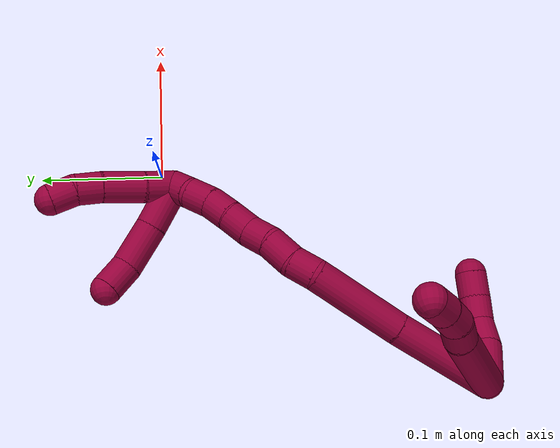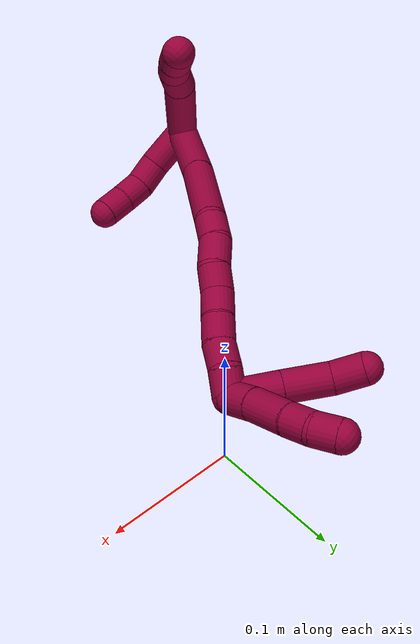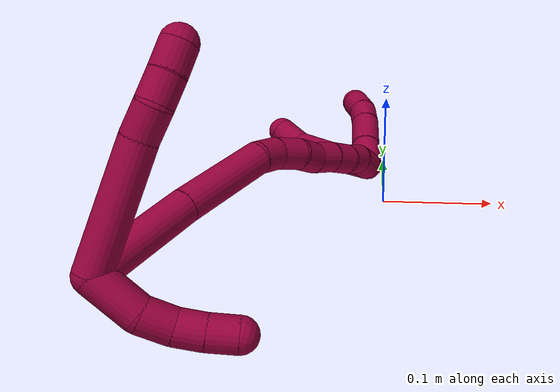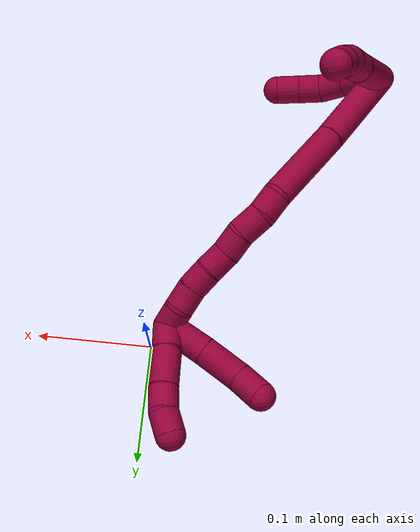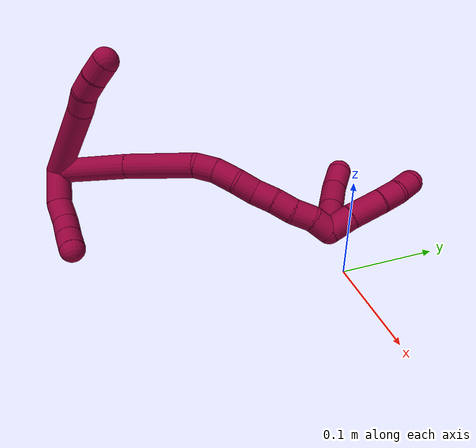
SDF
<sdf version="1.7">
 <world name="default">
  <model name="8">
   <static>0</static>
   <link name="8">
    <collision name="collision-cylinder-e_1_2_8">
     <pose>0.023711 0.036532 0.000295 -1.56272 0.575694 -0.57131</pose>
     <geometry><cylinder><radius>0.0125</radius><length>0.087106</length></cylinder></geometry>
     <surface>
      <friction><ode><mu>1.16</mu><mu2>1.16</mu2><slip1>0</slip1><slip2>0</slip2></ode></friction>
      <contact><ode><kp>1e+06</kp><kd>1</kd><max_vel>0</max_vel><min_depth>0.001</min_depth></ode></contact>
     </surface>
    </collision>
    <visual name="visual-cylinder-e_1_2_8">
     <pose>0.023711 0.036532 0.000295 -1.56272 0.575694 -0.57131</pose>
     <geometry><cylinder><radius>0.0125</radius><length>0.087106</length></cylinder></geometry>
     <material><ambient>0.584314 0 0.227451 1</ambient></material>
    </visual>
    <collision name="collision-cylinder-e_2_8_9">
     <pose>0.054654 0.081713 -0.000412 -1.68619 0.693083 -0.770286</pose>
     <geometry><cylinder><radius>0.0125</radius><length>0.022639</length></cylinder></geometry>
     <surface>
      <friction><ode><mu>1.16</mu><mu2>1.16</mu2><slip1>0</slip1><slip2>0</slip2></ode></friction>
      <contact><ode><kp>1e+06</kp><kd>1</kd><max_vel>0</max_vel><min_depth>0.001</min_depth></ode></contact>
     </surface>
    </collision>
    <visual name="visual-cylinder-e_2_8_9">
     <pose>0.054654 0.081713 -0.000412 -1.68619 0.693083 -0.770286</pose>
     <geometry><cylinder><radius>0.0125</radius><length>0.022639</length></cylinder></geometry>
     <material><ambient>0.584314 0 0.227451 1</ambient></material>
    </visual>
    <collision name="collision-cylinder-e_3_9_10">
     <pose>0.066059 0.099523 -0.001879 -1.6214 0.426944 -0.448395</pose>
     <geometry><cylinder><radius>0.0125</radius><length>0.020151</length></cylinder></geometry>
     <surface>
      <friction><ode><mu>1.16</mu><mu2>1.16</mu2><slip1>0</slip1><slip2>0</slip2></ode></friction>
      <contact><ode><kp>1e+06</kp><kd>1</kd><max_vel>0</max_vel><min_depth>0.001</min_depth></ode></contact>
     </surface>
    </collision>
    <visual name="visual-cylinder-e_3_9_10">
     <pose>0.066059 0.099523 -0.001879 -1.6214 0.426944 -0.448395</pose>
     <geometry><cylinder><radius>0.0125</radius><length>0.020151</length></cylinder></geometry>
     <material><ambient>0.584314 0 0.227451 1</ambient></material>
    </visual>
    <collision name="collision-cylinder-e_4_10_6">
     <pose>0.07371 0.118112 -0.002436 -1.58069 0.353456 -0.356896</pose>
     <geometry><cylinder><radius>0.0125</radius><length>0.020104</length></cylinder></geometry>
     <surface>
      <friction><ode><mu>1.16</mu><mu2>1.16</mu2><slip1>0</slip1><slip2>0</slip2></ode></friction>
      <contact><ode><kp>1e+06</kp><kd>1</kd><max_vel>0</max_vel><min_depth>0.001</min_depth></ode></contact>
     </surface>
    </collision>
    <visual name="visual-cylinder-e_4_10_6">
     <pose>0.07371 0.118112 -0.002436 -1.58069 0.353456 -0.356896</pose>
     <geometry><cylinder><radius>0.0125</radius><length>0.020104</length></cylinder></geometry>
     <material><ambient>0.584314 0 0.227451 1</ambient></material>
    </visual>
    <collision name="collision-cylinder-e_1_2_11">
     <pose>-0.002543 -0.006082 -0.017003 2.79809 -0.139918 -0.767859</pose>
     <geometry><cylinder><radius>0.0125</radius><length>0.036472</length></cylinder></geometry>
     <surface>
      <friction><ode><mu>1.16</mu><mu2>1.16</mu2><slip1>0</slip1><slip2>0</slip2></ode></friction>
      <contact><ode><kp>1e+06</kp><kd>1</kd><max_vel>0</max_vel><min_depth>0.001</min_depth></ode></contact>
     </surface>
    </collision>
    <visual name="visual-cylinder-e_1_2_11">
     <pose>-0.002543 -0.006082 -0.017003 2.79809 -0.139918 -0.767859</pose>
     <geometry><cylinder><radius>0.0125</radius><length>0.036472</length></cylinder></geometry>
     <material><ambient>0.584314 0 0.227451 1</ambient></material>
    </visual>
    <collision name="collision-cylinder-e_2_11_12">
     <pose>-0.006589 -0.01218 -0.045264 3.14009 -0.132709 -3.1189</pose>
     <geometry><cylinder><radius>0.0125</radius><length>0.022717</length></cylinder></geometry>
     <surface>
      <friction><ode><mu>1.16</mu><mu2>1.16</mu2><slip1>0</slip1><slip2>0</slip2></ode></friction>
      <contact><ode><kp>1e+06</kp><kd>1</kd><max_vel>0</max_vel><min_depth>0.001</min_depth></ode></contact>
     </surface>
    </collision>
    <visual name="visual-cylinder-e_2_11_12">
     <pose>-0.006589 -0.01218 -0.045264 3.14009 -0.132709 -3.1189</pose>
     <geometry><cylinder><radius>0.0125</radius><length>0.022717</length></cylinder></geometry>
     <material><ambient>0.584314 0 0.227451 1</ambient></material>
    </visual>
    <collision name="collision-cylinder-e_3_12_13">
     <pose>-0.006601 -0.011276 -0.0665 -3.04953 0.147739 -2.02802</pose>
     <geometry><cylinder><radius>0.0125</radius><length>0.02026</length></cylinder></geometry>
     <surface>
      <friction><ode><mu>1.16</mu><mu2>1.16</mu2><slip1>0</slip1><slip2>0</slip2></ode></friction>
      <contact><ode><kp>1e+06</kp><kd>1</kd><max_vel>0</max_vel><min_depth>0.001</min_depth></ode></contact>
     </surface>
    </collision>
    <visual name="visual-cylinder-e_3_12_13">
     <pose>-0.006601 -0.011276 -0.0665 -3.04953 0.147739 -2.02802</pose>
     <geometry><cylinder><radius>0.0125</radius><length>0.02026</length></cylinder></geometry>
     <material><ambient>0.584314 0 0.227451 1</ambient></material>
    </visual>
    <collision name="collision-cylinder-e_4_13_5">
     <pose>-0.00313 -0.008575 -0.086402 -2.96418 0.193903 -1.66005</pose>
     <geometry><cylinder><radius>0.0125</radius><length>0.020552</length></cylinder></geometry>
     <surface>
      <friction><ode><mu>1.16</mu><mu2>1.16</mu2><slip1>0</slip1><slip2>0</slip2></ode></friction>
      <contact><ode><kp>1e+06</kp><kd>1</kd><max_vel>0</max_vel><min_depth>0.001</min_depth></ode></contact>
     </surface>
    </collision>
    <visual name="visual-cylinder-e_4_13_5">
     <pose>-0.00313 -0.008575 -0.086402 -2.96418 0.193903 -1.66005</pose>
     <geometry><cylinder><radius>0.0125</radius><length>0.020552</length></cylinder></geometry>
     <material><ambient>0.584314 0 0.227451 1</ambient></material>
    </visual>
    <collision name="collision-cylinder-e_1_2_14">
     <pose>-0.007471 0.035074 -0.018212 -2.04972 -0.186825 0.306005</pose>
     <geometry><cylinder><radius>0.0125</radius><length>0.080442</length></cylinder></geometry>
     <surface>
      <friction><ode><mu>1.16</mu><mu2>1.16</mu2><slip1>0</slip1><slip2>0</slip2></ode></friction>
      <contact><ode><kp>1e+06</kp><kd>1</kd><max_vel>0</max_vel><min_depth>0.001</min_depth></ode></contact>
     </surface>
    </collision>
    <visual name="visual-cylinder-e_1_2_14">
     <pose>-0.007471 0.035074 -0.018212 -2.04972 -0.186825 0.306005</pose>
     <geometry><cylinder><radius>0.0125</radius><length>0.080442</length></cylinder></geometry>
     <material><ambient>0.584314 0 0.227451 1</ambient></material>
    </visual>
    <collision name="collision-cylinder-e_2_14_15">
     <pose>-0.021583 0.101288 -0.054946 -2.10738 -0.181291 0.316963</pose>
     <geometry><cylinder><radius>0.0125</radius><length>0.07367</length></cylinder></geometry>
     <surface>
      <friction><ode><mu>1.16</mu><mu2>1.16</mu2><slip1>0</slip1><slip2>0</slip2></ode></friction>
      <contact><ode><kp>1e+06</kp><kd>1</kd><max_vel>0</max_vel><min_depth>0.001</min_depth></ode></contact>
     </surface>
    </collision>
    <visual name="visual-cylinder-e_2_14_15">
     <pose>-0.021583 0.101288 -0.054946 -2.10738 -0.181291 0.316963</pose>
     <geometry><cylinder><radius>0.0125</radius><length>0.07367</length></cylinder></geometry>
     <material><ambient>0.584314 0 0.227451 1</ambient></material>
    </visual>
    <collision name="collision-cylinder-e_3_15_16">
     <pose>-0.032661 0.139468 -0.079545 -2.28285 -0.445136 0.918144</pose>
     <geometry><cylinder><radius>0.0125</radius><length>0.02061</length></cylinder></geometry>
     <surface>
      <friction><ode><mu>1.16</mu><mu2>1.16</mu2><slip1>0</slip1><slip2>0</slip2></ode></friction>
      <contact><ode><kp>1e+06</kp><kd>1</kd><max_vel>0</max_vel><min_depth>0.001</min_depth></ode></contact>
     </surface>
    </collision>
    <visual name="visual-cylinder-e_3_15_16">
     <pose>-0.032661 0.139468 -0.079545 -2.28285 -0.445136 0.918144</pose>
     <geometry><cylinder><radius>0.0125</radius><length>0.02061</length></cylinder></geometry>
     <material><ambient>0.584314 0 0.227451 1</ambient></material>
    </visual>
    <collision name="collision-cylinder-e_4_16_17">
     <pose>-0.041443 0.152526 -0.094652 -2.55391 -0.380823 1.13431</pose>
     <geometry><cylinder><radius>0.0125</radius><length>0.023376</length></cylinder></geometry>
     <surface>
      <friction><ode><mu>1.16</mu><mu2>1.16</mu2><slip1>0</slip1><slip2>0</slip2></ode></friction>
      <contact><ode><kp>1e+06</kp><kd>1</kd><max_vel>0</max_vel><min_depth>0.001</min_depth></ode></contact>
     </surface>
    </collision>
    <visual name="visual-cylinder-e_4_16_17">
     <pose>-0.041443 0.152526 -0.094652 -2.55391 -0.380823 1.13431</pose>
     <geometry><cylinder><radius>0.0125</radius><length>0.023376</length></cylinder></geometry>
     <material><ambient>0.584314 0 0.227451 1</ambient></material>
    </visual>
    <collision name="collision-cylinder-e_5_17_18">
     <pose>-0.051884 0.162972 -0.110547 -2.56847 -0.641054 1.68972</pose>
     <geometry><cylinder><radius>0.0125</radius><length>0.020389</length></cylinder></geometry>
     <surface>
      <friction><ode><mu>1.16</mu><mu2>1.16</mu2><slip1>0</slip1><slip2>0</slip2></ode></friction>
      <contact><ode><kp>1e+06</kp><kd>1</kd><max_vel>0</max_vel><min_depth>0.001</min_depth></ode></contact>
     </surface>
    </collision>
    <visual name="visual-cylinder-e_5_17_18">
     <pose>-0.051884 0.162972 -0.110547 -2.56847 -0.641054 1.68972</pose>
     <geometry><cylinder><radius>0.0125</radius><length>0.020389</length></cylinder></geometry>
     <material><ambient>0.584314 0 0.227451 1</ambient></material>
    </visual>
    <collision name="collision-cylinder-e_6_18_19">
     <pose>-0.06215 0.173253 -0.125013 -2.48557 -0.410095 1.09713</pose>
     <geometry><cylinder><radius>0.0125</radius><length>0.020919</length></cylinder></geometry>
     <surface>
      <friction><ode><mu>1.16</mu><mu2>1.16</mu2><slip1>0</slip1><slip2>0</slip2></ode></friction>
      <contact><ode><kp>1e+06</kp><kd>1</kd><max_vel>0</max_vel><min_depth>0.001</min_depth></ode></contact>
     </surface>
    </collision>
    <visual name="visual-cylinder-e_6_18_19">
     <pose>-0.06215 0.173253 -0.125013 -2.48557 -0.410095 1.09713</pose>
     <geometry><cylinder><radius>0.0125</radius><length>0.020919</length></cylinder></geometry>
     <material><ambient>0.584314 0 0.227451 1</ambient></material>
    </visual>
    <collision name="collision-cylinder-e_7_19_20">
     <pose>-0.071298 0.183888 -0.1401 -2.57293 -0.51073 1.45819</pose>
     <geometry><cylinder><radius>0.0125</radius><length>0.020367</length></cylinder></geometry>
     <surface>
      <friction><ode><mu>1.16</mu><mu2>1.16</mu2><slip1>0</slip1><slip2>0</slip2></ode></friction>
      <contact><ode><kp>1e+06</kp><kd>1</kd><max_vel>0</max_vel><min_depth>0.001</min_depth></ode></contact>
     </surface>
    </collision>
    <visual name="visual-cylinder-e_7_19_20">
     <pose>-0.071298 0.183888 -0.1401 -2.57293 -0.51073 1.45819</pose>
     <geometry><cylinder><radius>0.0125</radius><length>0.020367</length></cylinder></geometry>
     <material><ambient>0.584314 0 0.227451 1</ambient></material>
    </visual>
    <collision name="collision-cylinder-e_8_20_21">
     <pose>-0.081975 0.194479 -0.153513 -2.36645 -0.601828 1.30003</pose>
     <geometry><cylinder><radius>0.0125</radius><length>0.020132</length></cylinder></geometry>
     <surface>
      <friction><ode><mu>1.16</mu><mu2>1.16</mu2><slip1>0</slip1><slip2>0</slip2></ode></friction>
      <contact><ode><kp>1e+06</kp><kd>1</kd><max_vel>0</max_vel><min_depth>0.001</min_depth></ode></contact>
     </surface>
    </collision>
    <visual name="visual-cylinder-e_8_20_21">
     <pose>-0.081975 0.194479 -0.153513 -2.36645 -0.601828 1.30003</pose>
     <geometry><cylinder><radius>0.0125</radius><length>0.020132</length></cylinder></geometry>
     <material><ambient>0.584314 0 0.227451 1</ambient></material>
    </visual>
    <collision name="collision-cylinder-e_9_21_1">
     <pose>-0.094675 0.20333 -0.165972 -2.70552 -0.770898 2.14199</pose>
     <geometry><cylinder><radius>0.0125</radius><length>0.020096</length></cylinder></geometry>
     <surface>
      <friction><ode><mu>1.16</mu><mu2>1.16</mu2><slip1>0</slip1><slip2>0</slip2></ode></friction>
      <contact><ode><kp>1e+06</kp><kd>1</kd><max_vel>0</max_vel><min_depth>0.001</min_depth></ode></contact>
     </surface>
    </collision>
    <visual name="visual-cylinder-e_9_21_1">
     <pose>-0.094675 0.20333 -0.165972 -2.70552 -0.770898 2.14199</pose>
     <geometry><cylinder><radius>0.0125</radius><length>0.020096</length></cylinder></geometry>
     <material><ambient>0.584314 0 0.227451 1</ambient></material>
    </visual>
    <collision name="collision-cylinder-e_1_1_22">
     <pose>-0.10521 0.218205 -0.170346 -1.39024 -0.285787 0.238833</pose>
     <geometry><cylinder><radius>0.0125</radius><length>0.025069</length></cylinder></geometry>
     <surface>
      <friction><ode><mu>1.16</mu><mu2>1.16</mu2><slip1>0</slip1><slip2>0</slip2></ode></friction>
      <contact><ode><kp>1e+06</kp><kd>1</kd><max_vel>0</max_vel><min_depth>0.001</min_depth></ode></contact>
     </surface>
    </collision>
    <visual name="visual-cylinder-e_1_1_22">
     <pose>-0.10521 0.218205 -0.170346 -1.39024 -0.285787 0.238833</pose>
     <geometry><cylinder><radius>0.0125</radius><length>0.025069</length></cylinder></geometry>
     <material><ambient>0.584314 0 0.227451 1</ambient></material>
    </visual>
    <collision name="collision-cylinder-e_2_22_23">
     <pose>-0.11456 0.245909 -0.166554 -1.46836 -0.349523 0.316031</pose>
     <geometry><cylinder><radius>0.0125</radius><length>0.033968</length></cylinder></geometry>
     <surface>
      <friction><ode><mu>1.16</mu><mu2>1.16</mu2><slip1>0</slip1><slip2>0</slip2></ode></friction>
      <contact><ode><kp>1e+06</kp><kd>1</kd><max_vel>0</max_vel><min_depth>0.001</min_depth></ode></contact>
     </surface>
    </collision>
    <visual name="visual-cylinder-e_2_22_23">
     <pose>-0.11456 0.245909 -0.166554 -1.46836 -0.349523 0.316031</pose>
     <geometry><cylinder><radius>0.0125</radius><length>0.033968</length></cylinder></geometry>
     <material><ambient>0.584314 0 0.227451 1</ambient></material>
    </visual>
    <collision name="collision-cylinder-e_3_23_24">
     <pose>-0.12458 0.271031 -0.163254 -1.39234 -0.420601 0.353085</pose>
     <geometry><cylinder><radius>0.0125</radius><length>0.020591</length></cylinder></geometry>
     <surface>
      <friction><ode><mu>1.16</mu><mu2>1.16</mu2><slip1>0</slip1><slip2>0</slip2></ode></friction>
      <contact><ode><kp>1e+06</kp><kd>1</kd><max_vel>0</max_vel><min_depth>0.001</min_depth></ode></contact>
     </surface>
    </collision>
    <visual name="visual-cylinder-e_3_23_24">
     <pose>-0.12458 0.271031 -0.163254 -1.39234 -0.420601 0.353085</pose>
     <geometry><cylinder><radius>0.0125</radius><length>0.020591</length></cylinder></geometry>
     <material><ambient>0.584314 0 0.227451 1</ambient></material>
    </visual>
    <collision name="collision-cylinder-e_4_24_4">
     <pose>-0.134525 0.287908 -0.158036 -1.13516 -0.598841 0.388666</pose>
     <geometry><cylinder><radius>0.0125</radius><length>0.020372</length></cylinder></geometry>
     <surface>
      <friction><ode><mu>1.16</mu><mu2>1.16</mu2><slip1>0</slip1><slip2>0</slip2></ode></friction>
      <contact><ode><kp>1e+06</kp><kd>1</kd><max_vel>0</max_vel><min_depth>0.001</min_depth></ode></contact>
     </surface>
    </collision>
    <visual name="visual-cylinder-e_4_24_4">
     <pose>-0.134525 0.287908 -0.158036 -1.13516 -0.598841 0.388666</pose>
     <geometry><cylinder><radius>0.0125</radius><length>0.020372</length></cylinder></geometry>
     <material><ambient>0.584314 0 0.227451 1</ambient></material>
    </visual>
    <collision name="collision-cylinder-e_1_1_25">
     <pose>-0.112204 0.211155 -0.157563 -0.309654 -0.591017 0.094954</pose>
     <geometry><cylinder><radius>0.0125</radius><length>0.037786</length></cylinder></geometry>
     <surface>
      <friction><ode><mu>1.16</mu><mu2>1.16</mu2><slip1>0</slip1><slip2>0</slip2></ode></friction>
      <contact><ode><kp>1e+06</kp><kd>1</kd><max_vel>0</max_vel><min_depth>0.001</min_depth></ode></contact>
     </surface>
    </collision>
    <visual name="visual-cylinder-e_1_1_25">
     <pose>-0.112204 0.211155 -0.157563 -0.309654 -0.591017 0.094954</pose>
     <geometry><cylinder><radius>0.0125</radius><length>0.037786</length></cylinder></geometry>
     <material><ambient>0.584314 0 0.227451 1</ambient></material>
    </visual>
    <collision name="collision-cylinder-e_2_25_26">
     <pose>-0.132937 0.221643 -0.128253 -0.378104 -0.583502 0.114799</pose>
     <geometry><cylinder><radius>0.0125</radius><length>0.03705</length></cylinder></geometry>
     <surface>
      <friction><ode><mu>1.16</mu><mu2>1.16</mu2><slip1>0</slip1><slip2>0</slip2></ode></friction>
      <contact><ode><kp>1e+06</kp><kd>1</kd><max_vel>0</max_vel><min_depth>0.001</min_depth></ode></contact>
     </surface>
    </collision>
    <visual name="visual-cylinder-e_2_25_26">
     <pose>-0.132937 0.221643 -0.128253 -0.378104 -0.583502 0.114799</pose>
     <geometry><cylinder><radius>0.0125</radius><length>0.03705</length></cylinder></geometry>
     <material><ambient>0.584314 0 0.227451 1</ambient></material>
    </visual>
    <collision name="collision-cylinder-e_3_26_3">
     <pose>-0.147357 0.23419 -0.104202 -0.615059 -0.34148 0.109413</pose>
     <geometry><cylinder><radius>0.0125</radius><length>0.025163</length></cylinder></geometry>
     <surface>
      <friction><ode><mu>1.16</mu><mu2>1.16</mu2><slip1>0</slip1><slip2>0</slip2></ode></friction>
      <contact><ode><kp>1e+06</kp><kd>1</kd><max_vel>0</max_vel><min_depth>0.001</min_depth></ode></contact>
     </surface>
    </collision>
    <visual name="visual-cylinder-e_3_26_3">
     <pose>-0.147357 0.23419 -0.104202 -0.615059 -0.34148 0.109413</pose>
     <geometry><cylinder><radius>0.0125</radius><length>0.025163</length></cylinder></geometry>
     <material><ambient>0.584314 0 0.227451 1</ambient></material>
    </visual>
    <collision name="collision-sphere-3">
     <pose>-0.151571 0.241031 -0.09452 0 -0 0</pose>
     <geometry><sphere><radius>0.0125</radius></sphere></geometry>
     <surface>
      <friction><ode><mu>1.16</mu><mu2>1.16</mu2><slip1>0</slip1><slip2>0</slip2></ode></friction>
      <contact><ode><kp>1e+06</kp><kd>1</kd><max_vel>0</max_vel><min_depth>0.001</min_depth></ode></contact>
     </surface>
    </collision>
    <visual name="visual-sphere-3">
     <pose>-0.151571 0.241031 -0.09452 0 -0 0</pose>
     <geometry><sphere><radius>0.0125</radius></sphere></geometry>
     <material><ambient>0.584314 0 0.227451 1</ambient></material>
    </visual>
    <collision name="collision-sphere-26">
     <pose>-0.143144 0.22735 -0.113885 0 -0 0</pose>
     <geometry><sphere><radius>0.0125</radius></sphere></geometry>
     <surface>
      <friction><ode><mu>1.16</mu><mu2>1.16</mu2><slip1>0</slip1><slip2>0</slip2></ode></friction>
      <contact><ode><kp>1e+06</kp><kd>1</kd><max_vel>0</max_vel><min_depth>0.001</min_depth></ode></contact>
     </surface>
    </collision>
    <visual name="visual-sphere-26">
     <pose>-0.143144 0.22735 -0.113885 0 -0 0</pose>
     <geometry><sphere><radius>0.0125</radius></sphere></geometry>
     <material><ambient>0.584314 0 0.227451 1</ambient></material>
    </visual>
    <collision name="collision-sphere-25">
     <pose>-0.122731 0.215935 -0.142621 0 -0 0</pose>
     <geometry><sphere><radius>0.0125</radius></sphere></geometry>
     <surface>
      <friction><ode><mu>1.16</mu><mu2>1.16</mu2><slip1>0</slip1><slip2>0</slip2></ode></friction>
      <contact><ode><kp>1e+06</kp><kd>1</kd><max_vel>0</max_vel><min_depth>0.001</min_depth></ode></contact>
     </surface>
    </collision>
    <visual name="visual-sphere-25">
     <pose>-0.122731 0.215935 -0.142621 0 -0 0</pose>
     <geometry><sphere><radius>0.0125</radius></sphere></geometry>
     <material><ambient>0.584314 0 0.227451 1</ambient></material>
    </visual>
    <collision name="collision-sphere-4">
     <pose>-0.140267 0.295535 -0.154485 0 -0 0</pose>
     <geometry><sphere><radius>0.0125</radius></sphere></geometry>
     <surface>
      <friction><ode><mu>1.16</mu><mu2>1.16</mu2><slip1>0</slip1><slip2>0</slip2></ode></friction>
      <contact><ode><kp>1e+06</kp><kd>1</kd><max_vel>0</max_vel><min_depth>0.001</min_depth></ode></contact>
     </surface>
    </collision>
    <visual name="visual-sphere-4">
     <pose>-0.140267 0.295535 -0.154485 0 -0 0</pose>
     <geometry><sphere><radius>0.0125</radius></sphere></geometry>
     <material><ambient>0.584314 0 0.227451 1</ambient></material>
    </visual>
    <collision name="collision-sphere-24">
     <pose>-0.128783 0.28028 -0.161586 0 -0 0</pose>
     <geometry><sphere><radius>0.0125</radius></sphere></geometry>
     <surface>
      <friction><ode><mu>1.16</mu><mu2>1.16</mu2><slip1>0</slip1><slip2>0</slip2></ode></friction>
      <contact><ode><kp>1e+06</kp><kd>1</kd><max_vel>0</max_vel><min_depth>0.001</min_depth></ode></contact>
     </surface>
    </collision>
    <visual name="visual-sphere-24">
     <pose>-0.128783 0.28028 -0.161586 0 -0 0</pose>
     <geometry><sphere><radius>0.0125</radius></sphere></geometry>
     <material><ambient>0.584314 0 0.227451 1</ambient></material>
    </visual>
    <collision name="collision-sphere-23">
     <pose>-0.120376 0.261782 -0.164923 0 -0 0</pose>
     <geometry><sphere><radius>0.0125</radius></sphere></geometry>
     <surface>
      <friction><ode><mu>1.16</mu><mu2>1.16</mu2><slip1>0</slip1><slip2>0</slip2></ode></friction>
      <contact><ode><kp>1e+06</kp><kd>1</kd><max_vel>0</max_vel><min_depth>0.001</min_depth></ode></contact>
     </surface>
    </collision>
    <visual name="visual-sphere-23">
     <pose>-0.120376 0.261782 -0.164923 0 -0 0</pose>
     <geometry><sphere><radius>0.0125</radius></sphere></geometry>
     <material><ambient>0.584314 0 0.227451 1</ambient></material>
    </visual>
    <collision name="collision-sphere-22">
     <pose>-0.108744 0.230035 -0.168186 0 -0 0</pose>
     <geometry><sphere><radius>0.0125</radius></sphere></geometry>
     <surface>
      <friction><ode><mu>1.16</mu><mu2>1.16</mu2><slip1>0</slip1><slip2>0</slip2></ode></friction>
      <contact><ode><kp>1e+06</kp><kd>1</kd><max_vel>0</max_vel><min_depth>0.001</min_depth></ode></contact>
     </surface>
    </collision>
    <visual name="visual-sphere-22">
     <pose>-0.108744 0.230035 -0.168186 0 -0 0</pose>
     <geometry><sphere><radius>0.0125</radius></sphere></geometry>
     <material><ambient>0.584314 0 0.227451 1</ambient></material>
    </visual>
    <collision name="collision-sphere-1">
     <pose>-0.101676 0.206374 -0.172505 0 -0 0</pose>
     <geometry><sphere><radius>0.0125</radius></sphere></geometry>
     <surface>
      <friction><ode><mu>1.16</mu><mu2>1.16</mu2><slip1>0</slip1><slip2>0</slip2></ode></friction>
      <contact><ode><kp>1e+06</kp><kd>1</kd><max_vel>0</max_vel><min_depth>0.001</min_depth></ode></contact>
     </surface>
    </collision>
    <visual name="visual-sphere-1">
     <pose>-0.101676 0.206374 -0.172505 0 -0 0</pose>
     <geometry><sphere><radius>0.0125</radius></sphere></geometry>
     <material><ambient>0.584314 0 0.227451 1</ambient></material>
    </visual>
    <collision name="collision-sphere-21">
     <pose>-0.087674 0.200285 -0.15944 0 -0 0</pose>
     <geometry><sphere><radius>0.0125</radius></sphere></geometry>
     <surface>
      <friction><ode><mu>1.16</mu><mu2>1.16</mu2><slip1>0</slip1><slip2>0</slip2></ode></friction>
      <contact><ode><kp>1e+06</kp><kd>1</kd><max_vel>0</max_vel><min_depth>0.001</min_depth></ode></contact>
     </surface>
    </collision>
    <visual name="visual-sphere-21">
     <pose>-0.087674 0.200285 -0.15944 0 -0 0</pose>
     <geometry><sphere><radius>0.0125</radius></sphere></geometry>
     <material><ambient>0.584314 0 0.227451 1</ambient></material>
    </visual>
    <collision name="collision-sphere-11">
     <pose>-0.005086 -0.012163 -0.034006 0 -0 0</pose>
     <geometry><sphere><radius>0.0125</radius></sphere></geometry>
     <surface>
      <friction><ode><mu>1.16</mu><mu2>1.16</mu2><slip1>0</slip1><slip2>0</slip2></ode></friction>
      <contact><ode><kp>1e+06</kp><kd>1</kd><max_vel>0</max_vel><min_depth>0.001</min_depth></ode></contact>
     </surface>
    </collision>
    <visual name="visual-sphere-11">
     <pose>-0.005086 -0.012163 -0.034006 0 -0 0</pose>
     <geometry><sphere><radius>0.0125</radius></sphere></geometry>
     <material><ambient>0.584314 0 0.227451 1</ambient></material>
    </visual>
    <collision name="collision-sphere-6">
     <pose>0.07719 0.127542 -0.002529 0 -0 0</pose>
     <geometry><sphere><radius>0.0125</radius></sphere></geometry>
     <surface>
      <friction><ode><mu>1.16</mu><mu2>1.16</mu2><slip1>0</slip1><slip2>0</slip2></ode></friction>
      <contact><ode><kp>1e+06</kp><kd>1</kd><max_vel>0</max_vel><min_depth>0.001</min_depth></ode></contact>
     </surface>
    </collision>
    <visual name="visual-sphere-6">
     <pose>0.07719 0.127542 -0.002529 0 -0 0</pose>
     <geometry><sphere><radius>0.0125</radius></sphere></geometry>
     <material><ambient>0.584314 0 0.227451 1</ambient></material>
    </visual>
    <collision name="collision-sphere-10">
     <pose>0.070231 0.108682 -0.002343 0 -0 0</pose>
     <geometry><sphere><radius>0.0125</radius></sphere></geometry>
     <surface>
      <friction><ode><mu>1.16</mu><mu2>1.16</mu2><slip1>0</slip1><slip2>0</slip2></ode></friction>
      <contact><ode><kp>1e+06</kp><kd>1</kd><max_vel>0</max_vel><min_depth>0.001</min_depth></ode></contact>
     </surface>
    </collision>
    <visual name="visual-sphere-10">
     <pose>0.070231 0.108682 -0.002343 0 -0 0</pose>
     <geometry><sphere><radius>0.0125</radius></sphere></geometry>
     <material><ambient>0.584314 0 0.227451 1</ambient></material>
    </visual>
    <collision name="collision-sphere-9">
     <pose>0.061886 0.090363 -0.001415 0 -0 0</pose>
     <geometry><sphere><radius>0.0125</radius></sphere></geometry>
     <surface>
      <friction><ode><mu>1.16</mu><mu2>1.16</mu2><slip1>0</slip1><slip2>0</slip2></ode></friction>
      <contact><ode><kp>1e+06</kp><kd>1</kd><max_vel>0</max_vel><min_depth>0.001</min_depth></ode></contact>
     </surface>
    </collision>
    <visual name="visual-sphere-9">
     <pose>0.061886 0.090363 -0.001415 0 -0 0</pose>
     <geometry><sphere><radius>0.0125</radius></sphere></geometry>
     <material><ambient>0.584314 0 0.227451 1</ambient></material>
    </visual>
    <collision name="collision-sphere-2">
     <geometry><sphere><radius>0.0125</radius></sphere></geometry>
     <surface>
      <friction><ode><mu>1.16</mu><mu2>1.16</mu2><slip1>0</slip1><slip2>0</slip2></ode></friction>
      <contact><ode><kp>1e+06</kp><kd>1</kd><max_vel>0</max_vel><min_depth>0.001</min_depth></ode></contact>
     </surface>
    </collision>
    <visual name="visual-sphere-2">
     <geometry><sphere><radius>0.0125</radius></sphere></geometry>
     <material><ambient>0.584314 0 0.227451 1</ambient></material>
    </visual>
    <collision name="collision-sphere-19">
     <pose>-0.066321 0.179104 -0.132614 0 -0 0</pose>
     <geometry><sphere><radius>0.0125</radius></sphere></geometry>
     <surface>
      <friction><ode><mu>1.16</mu><mu2>1.16</mu2><slip1>0</slip1><slip2>0</slip2></ode></friction>
      <contact><ode><kp>1e+06</kp><kd>1</kd><max_vel>0</max_vel><min_depth>0.001</min_depth></ode></contact>
     </surface>
    </collision>
    <visual name="visual-sphere-19">
     <pose>-0.066321 0.179104 -0.132614 0 -0 0</pose>
     <geometry><sphere><radius>0.0125</radius></sphere></geometry>
     <material><ambient>0.584314 0 0.227451 1</ambient></material>
    </visual>
    <collision name="collision-sphere-8">
     <pose>0.047422 0.073063 0.00059 0 -0 0</pose>
     <geometry><sphere><radius>0.0125</radius></sphere></geometry>
     <surface>
      <friction><ode><mu>1.16</mu><mu2>1.16</mu2><slip1>0</slip1><slip2>0</slip2></ode></friction>
      <contact><ode><kp>1e+06</kp><kd>1</kd><max_vel>0</max_vel><min_depth>0.001</min_depth></ode></contact>
     </surface>
    </collision>
    <visual name="visual-sphere-8">
     <pose>0.047422 0.073063 0.00059 0 -0 0</pose>
     <geometry><sphere><radius>0.0125</radius></sphere></geometry>
     <material><ambient>0.584314 0 0.227451 1</ambient></material>
    </visual>
    <collision name="collision-sphere-12">
     <pose>-0.008092 -0.012197 -0.056523 0 -0 0</pose>
     <geometry><sphere><radius>0.0125</radius></sphere></geometry>
     <surface>
      <friction><ode><mu>1.16</mu><mu2>1.16</mu2><slip1>0</slip1><slip2>0</slip2></ode></friction>
      <contact><ode><kp>1e+06</kp><kd>1</kd><max_vel>0</max_vel><min_depth>0.001</min_depth></ode></contact>
     </surface>
    </collision>
    <visual name="visual-sphere-12">
     <pose>-0.008092 -0.012197 -0.056523 0 -0 0</pose>
     <geometry><sphere><radius>0.0125</radius></sphere></geometry>
     <material><ambient>0.584314 0 0.227451 1</ambient></material>
    </visual>
    <collision name="collision-sphere-13">
     <pose>-0.00511 -0.010355 -0.076477 0 -0 0</pose>
     <geometry><sphere><radius>0.0125</radius></sphere></geometry>
     <surface>
      <friction><ode><mu>1.16</mu><mu2>1.16</mu2><slip1>0</slip1><slip2>0</slip2></ode></friction>
      <contact><ode><kp>1e+06</kp><kd>1</kd><max_vel>0</max_vel><min_depth>0.001</min_depth></ode></contact>
     </surface>
    </collision>
    <visual name="visual-sphere-13">
     <pose>-0.00511 -0.010355 -0.076477 0 -0 0</pose>
     <geometry><sphere><radius>0.0125</radius></sphere></geometry>
     <material><ambient>0.584314 0 0.227451 1</ambient></material>
    </visual>
    <collision name="collision-sphere-5">
     <pose>-0.00115 -0.006796 -0.096327 0 -0 0</pose>
     <geometry><sphere><radius>0.0125</radius></sphere></geometry>
     <surface>
      <friction><ode><mu>1.16</mu><mu2>1.16</mu2><slip1>0</slip1><slip2>0</slip2></ode></friction>
      <contact><ode><kp>1e+06</kp><kd>1</kd><max_vel>0</max_vel><min_depth>0.001</min_depth></ode></contact>
     </surface>
    </collision>
    <visual name="visual-sphere-5">
     <pose>-0.00115 -0.006796 -0.096327 0 -0 0</pose>
     <geometry><sphere><radius>0.0125</radius></sphere></geometry>
     <material><ambient>0.584314 0 0.227451 1</ambient></material>
    </visual>
    <collision name="collision-sphere-14">
     <pose>-0.014941 0.070149 -0.036424 0 -0 0</pose>
     <geometry><sphere><radius>0.0125</radius></sphere></geometry>
     <surface>
      <friction><ode><mu>1.16</mu><mu2>1.16</mu2><slip1>0</slip1><slip2>0</slip2></ode></friction>
      <contact><ode><kp>1e+06</kp><kd>1</kd><max_vel>0</max_vel><min_depth>0.001</min_depth></ode></contact>
     </surface>
    </collision>
    <visual name="visual-sphere-14">
     <pose>-0.014941 0.070149 -0.036424 0 -0 0</pose>
     <geometry><sphere><radius>0.0125</radius></sphere></geometry>
     <material><ambient>0.584314 0 0.227451 1</ambient></material>
    </visual>
    <collision name="collision-sphere-15">
     <pose>-0.028224 0.132427 -0.073467 0 -0 0</pose>
     <geometry><sphere><radius>0.0125</radius></sphere></geometry>
     <surface>
      <friction><ode><mu>1.16</mu><mu2>1.16</mu2><slip1>0</slip1><slip2>0</slip2></ode></friction>
      <contact><ode><kp>1e+06</kp><kd>1</kd><max_vel>0</max_vel><min_depth>0.001</min_depth></ode></contact>
     </surface>
    </collision>
    <visual name="visual-sphere-15">
     <pose>-0.028224 0.132427 -0.073467 0 -0 0</pose>
     <geometry><sphere><radius>0.0125</radius></sphere></geometry>
     <material><ambient>0.584314 0 0.227451 1</ambient></material>
    </visual>
    <collision name="collision-sphere-16">
     <pose>-0.037098 0.14651 -0.085622 0 -0 0</pose>
     <geometry><sphere><radius>0.0125</radius></sphere></geometry>
     <surface>
      <friction><ode><mu>1.16</mu><mu2>1.16</mu2><slip1>0</slip1><slip2>0</slip2></ode></friction>
      <contact><ode><kp>1e+06</kp><kd>1</kd><max_vel>0</max_vel><min_depth>0.001</min_depth></ode></contact>
     </surface>
    </collision>
    <visual name="visual-sphere-16">
     <pose>-0.037098 0.14651 -0.085622 0 -0 0</pose>
     <geometry><sphere><radius>0.0125</radius></sphere></geometry>
     <material><ambient>0.584314 0 0.227451 1</ambient></material>
    </visual>
    <collision name="collision-sphere-17">
     <pose>-0.045787 0.158541 -0.103682 0 -0 0</pose>
     <geometry><sphere><radius>0.0125</radius></sphere></geometry>
     <surface>
      <friction><ode><mu>1.16</mu><mu2>1.16</mu2><slip1>0</slip1><slip2>0</slip2></ode></friction>
      <contact><ode><kp>1e+06</kp><kd>1</kd><max_vel>0</max_vel><min_depth>0.001</min_depth></ode></contact>
     </surface>
    </collision>
    <visual name="visual-sphere-17">
     <pose>-0.045787 0.158541 -0.103682 0 -0 0</pose>
     <geometry><sphere><radius>0.0125</radius></sphere></geometry>
     <material><ambient>0.584314 0 0.227451 1</ambient></material>
    </visual>
    <collision name="collision-sphere-18">
     <pose>-0.05798 0.167403 -0.117412 0 -0 0</pose>
     <geometry><sphere><radius>0.0125</radius></sphere></geometry>
     <surface>
      <friction><ode><mu>1.16</mu><mu2>1.16</mu2><slip1>0</slip1><slip2>0</slip2></ode></friction>
      <contact><ode><kp>1e+06</kp><kd>1</kd><max_vel>0</max_vel><min_depth>0.001</min_depth></ode></contact>
     </surface>
    </collision>
    <visual name="visual-sphere-18">
     <pose>-0.05798 0.167403 -0.117412 0 -0 0</pose>
     <geometry><sphere><radius>0.0125</radius></sphere></geometry>
     <material><ambient>0.584314 0 0.227451 1</ambient></material>
    </visual>
    <collision name="collision-sphere-20">
     <pose>-0.076276 0.188672 -0.147586 0 -0 0</pose>
     <geometry><sphere><radius>0.0125</radius></sphere></geometry>
     <surface>
      <friction><ode><mu>1.16</mu><mu2>1.16</mu2><slip1>0</slip1><slip2>0</slip2></ode></friction>
      <contact><ode><kp>1e+06</kp><kd>1</kd><max_vel>0</max_vel><min_depth>0.001</min_depth></ode></contact>
     </surface>
    </collision>
    <visual name="visual-sphere-20">
     <pose>-0.076276 0.188672 -0.147586 0 -0 0</pose>
     <geometry><sphere><radius>0.0125</radius></sphere></geometry>
     <material><ambient>0.584314 0 0.227451 1</ambient></material>
    </visual>
    <inertial>
     <pose>-0.040305 0.121705 -0.077589 0 -0 0</pose>
     <mass>0.75</mass>
     <inertia>
      <ixx>0.000139</ixx>
      <ixy>0</ixy>
      <ixz>0</ixz>
      <iyy>3.9e-05</iyy>
      <iyz>0</iyz>
      <izz>-0.000158</izz>
     </inertia>
    </inertial>
   </link>
   <pose>-0.177261 -0.247971 0.065028 0.984718 -0.832254 -1.05255</pose>
  </model>
 </world>
</sdf>
